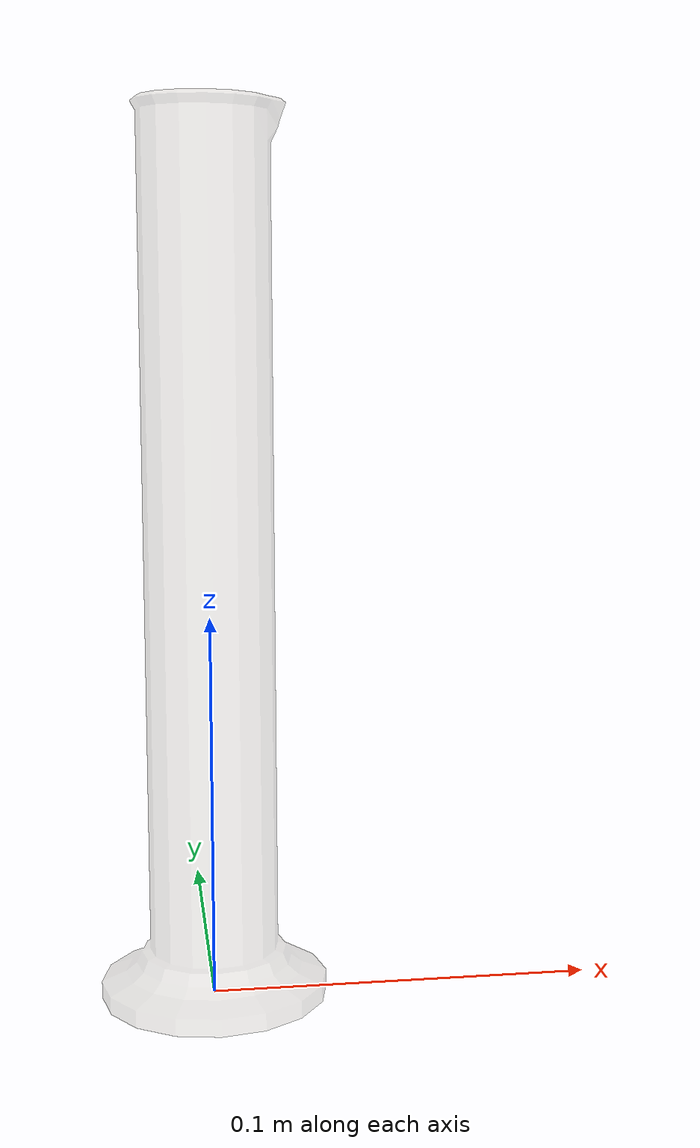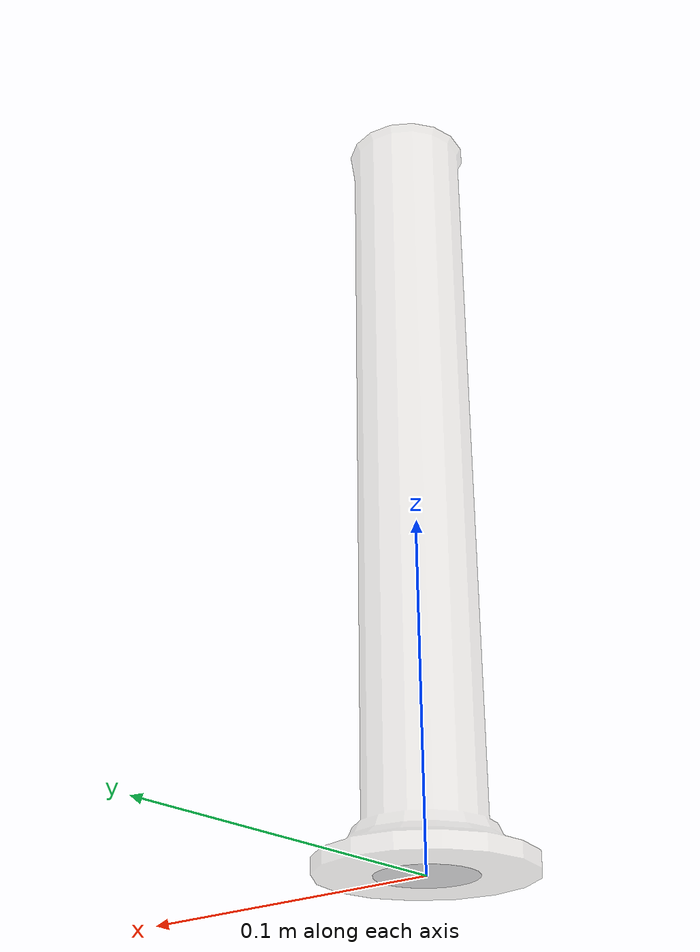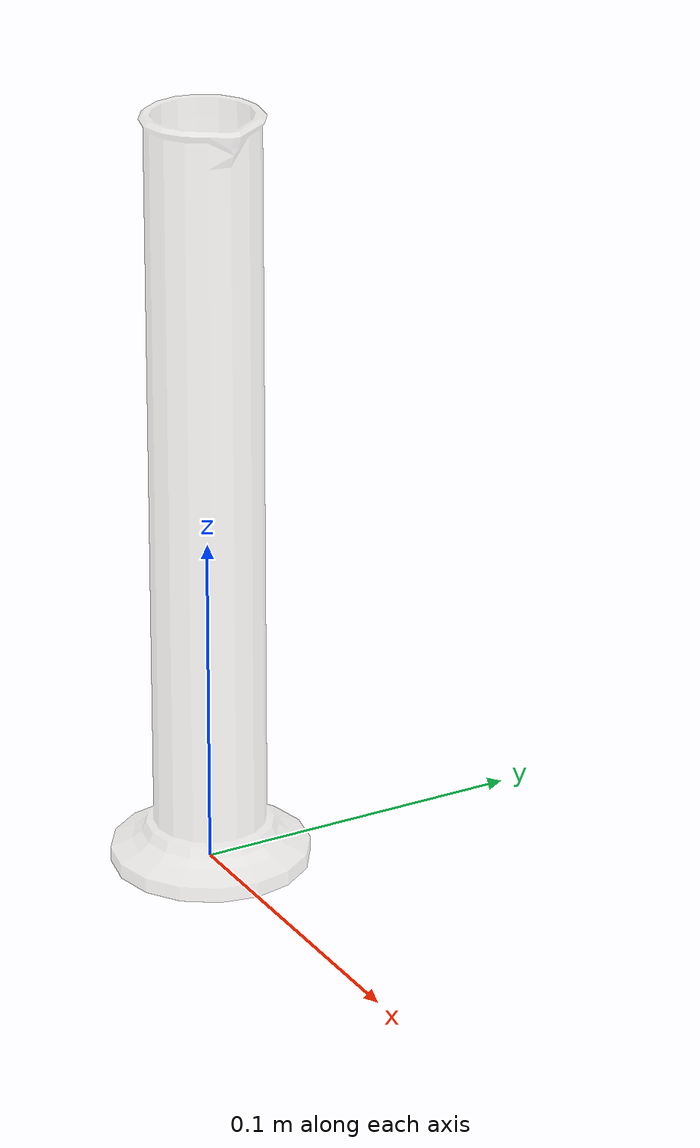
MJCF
<?xml version="1.0" ?>
<mujoco model="cylinder_large">
  <asset>
    <texture type="2d" name="lab_cylinder_a" file="lab_cylinder_a.png"/>
    <material name="lab_cylinder_a" texture="lab_cylinder_a" specular="0.4000000000000001" shininess="0.001" rgba="1 1 1 0.3"/>
    <mesh file="cylinder_large.obj" scale="0.011148996505364010 0.011148996505364010 0.011148996505364010"/>
    <mesh file="cylinder_large/cylinder_large_collision_0.obj" scale="0.011148996505364010 0.011148996505364010 0.011148996505364010"/>
    <mesh file="cylinder_large/cylinder_large_collision_1.obj" scale="0.011148996505364010 0.011148996505364010 0.011148996505364010"/>
    <mesh file="cylinder_large/cylinder_large_collision_2.obj" scale="0.011148996505364010 0.011148996505364010 0.011148996505364010"/>
    <mesh file="cylinder_large/cylinder_large_collision_3.obj" scale="0.011148996505364010 0.011148996505364010 0.011148996505364010"/>
    <mesh file="cylinder_large/cylinder_large_collision_4.obj" scale="0.011148996505364010 0.011148996505364010 0.011148996505364010"/>
    <mesh file="cylinder_large/cylinder_large_collision_5.obj" scale="0.011148996505364010 0.011148996505364010 0.011148996505364010"/>
    <mesh file="cylinder_large/cylinder_large_collision_6.obj" scale="0.011148996505364010 0.011148996505364010 0.011148996505364010"/>
    <mesh file="cylinder_large/cylinder_large_collision_7.obj" scale="0.011148996505364010 0.011148996505364010 0.011148996505364010"/>
    <mesh file="cylinder_large/cylinder_large_collision_8.obj" scale="0.011148996505364010 0.011148996505364010 0.011148996505364010"/>
      <material name="CaSO4" rgba="1 1 1 0.7"/>
    <material name="CuCl2" rgba="0.141 1.0 0.174 0.4"/>
    <material name="CuSO4" rgba="0 0.45 1 0.4"/>
    <material name="FeCl3" rgba="0.6475 0.5686 0.023 0.4"/>
    <material name="KMnO4" rgba="0.5 0 0.5 0.4"/>
    <material name="I2" rgba="0.3 0.13 0.0 0.4"/>
    <material name="K2CrO4" rgba="0.57 0.12 0.013 0.4"/>
    <material name="NaCl" rgba="1 1 1 0.3"/>
</asset>
  <worldbody>
    <body name="cylinder_large">
      <inertial pos="0 0 0.115000" mass="0.02" diaginertia="0.001881 0.001881 0.001176"/>
      <geom material="lab_cylinder_a" mesh="cylinder_large" class="visual"/>
      <geom mesh="cylinder_large_collision_0" class="collision"/>
      <geom mesh="cylinder_large_collision_1" class="collision"/>
      <geom mesh="cylinder_large_collision_2" class="collision"/>
      <geom mesh="cylinder_large_collision_3" class="collision"/>
      <geom mesh="cylinder_large_collision_4" class="collision"/>
      <geom mesh="cylinder_large_collision_5" class="collision"/>
      <geom mesh="cylinder_large_collision_6" class="collision"/>
      <geom mesh="cylinder_large_collision_7" class="collision"/>
      <geom mesh="cylinder_large_collision_8" class="collision"/>
      <site class="grasppoint" pos="0.0000 0.0000 0.2185"/>
          <geom name="solution" type="cylinder" size="0.013833 0.069000" pos="0 0 0.068967" material="CaSO4" class="visual"/>
      <site name="top_site" pos="0 0 0.230000" size="0.01" rgba="1 0 0 0"/>
      <site name="bottom_site" pos="0 0 0.000000" size="0.01" rgba="0 1 0 0"/>
</body>
  </worldbody>
  <compiler boundmass="0.015" boundinertia="1e-05" angle="radian"/>
  <default>
    <default class="visual">
      <geom group="2" type="mesh" contype="0" conaffinity="0" density="50"/>
    </default>
    <default class="collision">
      <geom group="3" type="mesh" density="50" friction="1.5 0.1 0.1" solimp="0.9 0.95 0.001" solref="0.02 1"/>
    </default>
    <default class="grasppoint">
      <site type="sphere" size="0.005" group="4" rgba="0 0 1 1"/>
    </default>
  </default>
</mujoco>
